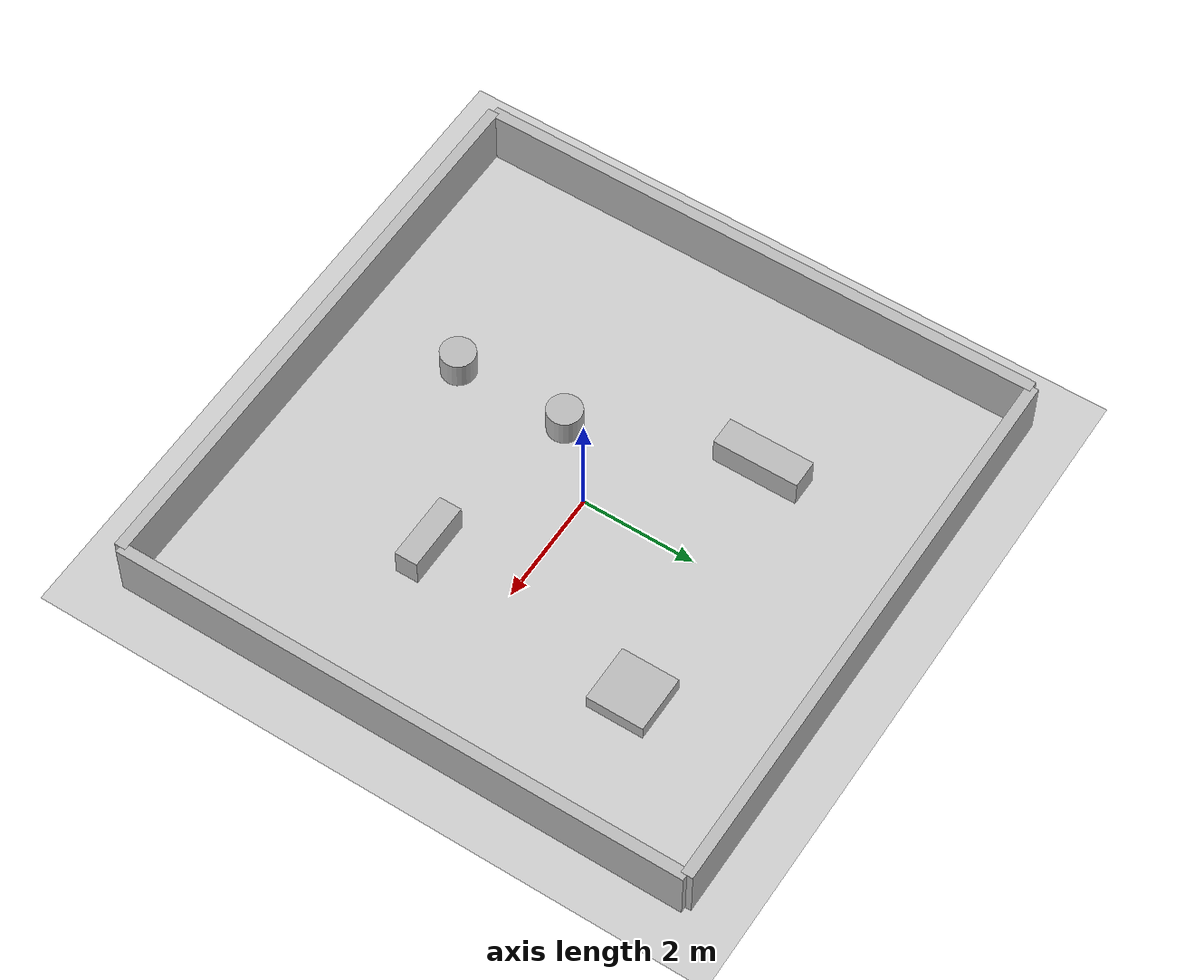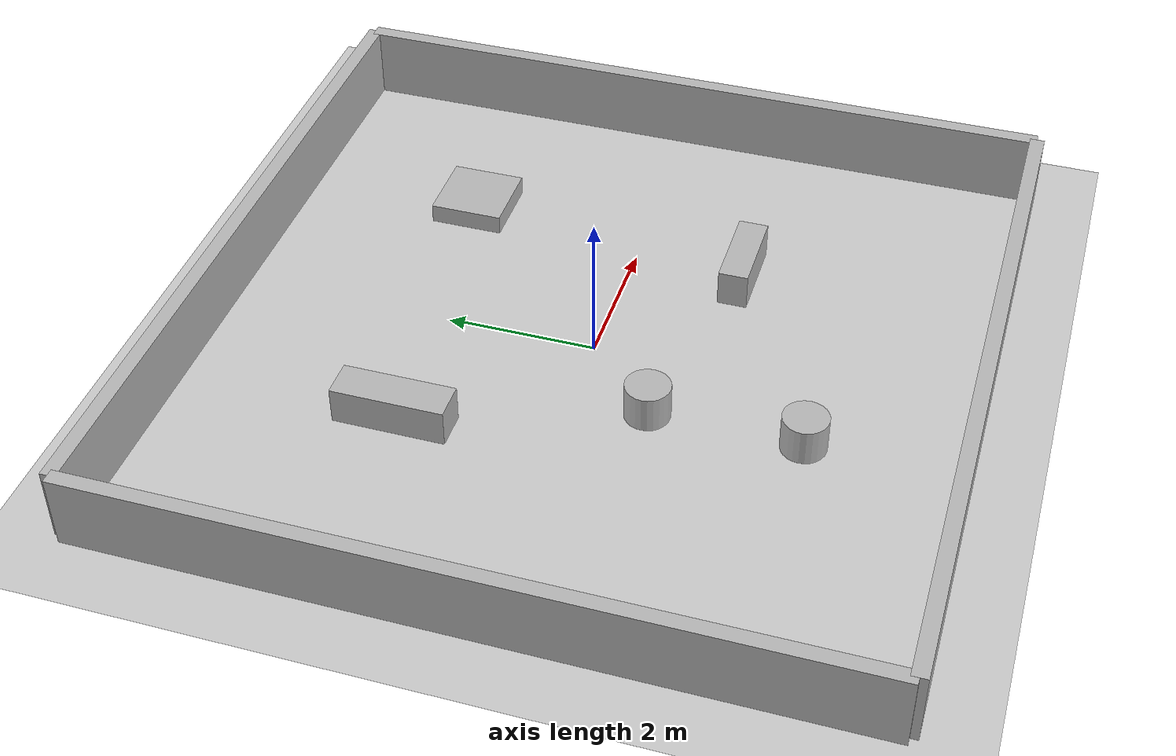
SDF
<?xml version="1.0" ?>
<sdf version="1.6">

  <world name="room_world">

    <!-- Physics -->
    <physics type="ode">
      <real_time_update_rate>1000</real_time_update_rate>
      <max_step_size>0.001</max_step_size>
      <real_time_factor>1</real_time_factor>
    </physics>

    <!-- Sun -->
    <include>
      <uri>model://sun</uri>
    </include>

    <!-- Ground -->
    <include>
      <uri>model://ground_plane</uri>
    </include>

    <!-- ROOM WALLS (10m x 10m) -->

    <!-- North Wall -->
    <model name="wall_north">
      <static>true</static>
      <pose>0 5 0.5 0 0 0</pose>
      <link name="link">
        <collision name="collision">
          <geometry>
            <box><size>10 0.2 1</size></box>
          </geometry>
        </collision>
        <visual name="visual">
          <geometry>
            <box><size>10 0.2 1</size></box>
          </geometry>
        </visual>
      </link>
    </model>

    <!-- South Wall -->
    <model name="wall_south">
      <static>true</static>
      <pose>0 -5 0.5 0 0 0</pose>
      <link name="link">
        <collision name="collision">
          <geometry>
            <box><size>10 0.2 1</size></box>
          </geometry>
        </collision>
        <visual name="visual">
          <geometry>
            <box><size>10 0.2 1</size></box>
          </geometry>
        </visual>
      </link>
    </model>

    <!-- East Wall -->
    <model name="wall_east">
      <static>true</static>
      <pose>5 0 0.5 0 0 0</pose>
      <link name="link">
        <collision name="collision">
          <geometry>
            <box><size>0.2 10 1</size></box>
          </geometry>
        </collision>
        <visual name="visual">
          <geometry>
            <box><size>0.2 10 1</size></box>
          </geometry>
        </visual>
      </link>
    </model>

    <!-- West Wall -->
    <model name="wall_west">
      <static>true</static>
      <pose>-5 0 0.5 0 0 0</pose>
      <link name="link">
        <collision name="collision">
          <geometry>
            <box><size>0.2 10 1</size></box>
          </geometry>
        </collision>
        <visual name="visual">
          <geometry>
            <box><size>0.2 10 1</size></box>
          </geometry>
        </visual>
      </link>
    </model>

    <!-- INTERNAL OBSTACLES -->

    <!-- Center box -->
    <model name="obstacle_center">
      <static>true</static>
      <pose>2.5 2.5 0 0 0 0</pose>
      <link name="link">
        <collision name="collision">
          <geometry>
            <box><size>1 1 0.5</size></box>
          </geometry>
        </collision>
        <visual name="visual">
          <geometry>
            <box><size>1 1 0.5</size></box>
          </geometry>
        </visual>
      </link>
    </model>

    <!-- Side obstacle -->
    <model name="obstacle_1">
      <static>true</static>
      <pose>-2 2 0.25 0 0 0</pose>
      <link name="link">
        <collision name="collision">
          <geometry>
            <box><size>0.5 1.5 0.5</size></box>
          </geometry>
        </collision>
        <visual name="visual">
          <geometry>
            <box><size>0.5 1.5 0.5</size></box>
          </geometry>
        </visual>
      </link>
    </model>

    <!-- Another obstacle -->
    <model name="obstacle_2">
      <static>true</static>
      <pose>2 -1.5 0.25 0 0 0</pose>
      <link name="link">
        <collision name="collision">
          <geometry>
            <box><size>1.2 0.4 0.5</size></box>
          </geometry>
        </collision>
        <visual name="visual">
          <geometry>
            <box><size>1.2 0.4 0.5</size></box>
          </geometry>
        </visual>
      </link>
    </model>

    <model name="cylinder_obstacle">
  <static>true</static>

  <!-- pose: x y z roll pitch yaw -->
  <pose>-1.0 -1.0 0.25 0 0 0</pose>

  <link name="link">
    <collision name="collision">
      <geometry>
        <cylinder>
          <radius>0.3</radius>
          <length>0.5</length>
        </cylinder>
      </geometry>
    </collision>

    <visual name="visual">
      <geometry>
        <cylinder>
          <radius>0.3</radius>
          <length>0.5</length>
        </cylinder>
      </geometry>
    </visual>
  </link>
</model>

    <model name="cylinder_obstacle2">
  <static>true</static>

  <!-- pose: x y z roll pitch yaw -->
  <pose>-1.0 -3.0 0.25 0 0 0</pose>

  <link name="link">
    <collision name="collision">
      <geometry>
        <cylinder>
          <radius>0.3</radius>
          <length>0.5</length>
        </cylinder>
      </geometry>
    </collision>

    <visual name="visual">
      <geometry>
        <cylinder>
          <radius>0.3</radius>
          <length>0.5</length>
        </cylinder>
      </geometry>
    </visual>
  </link>
</model>

  </world>
</sdf>
